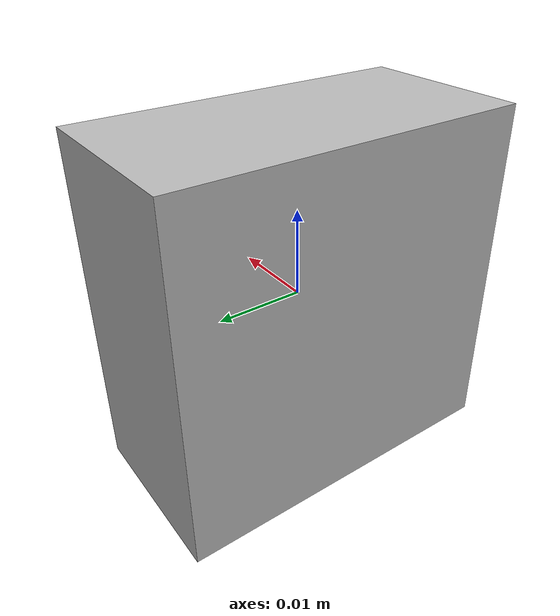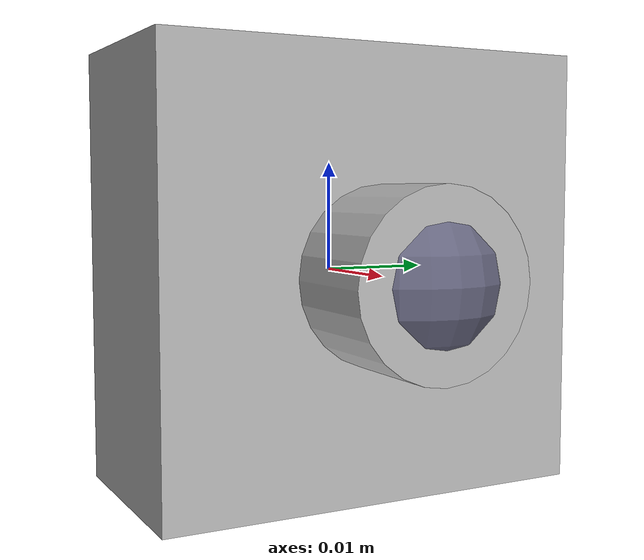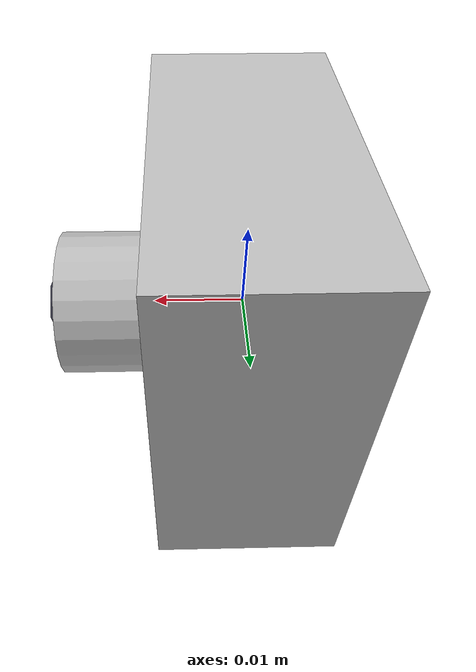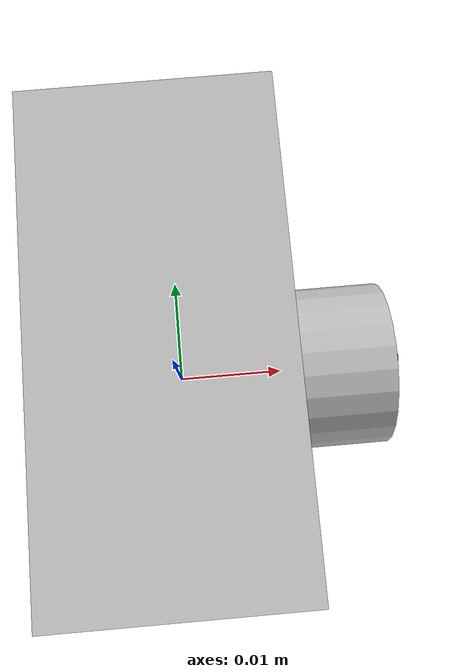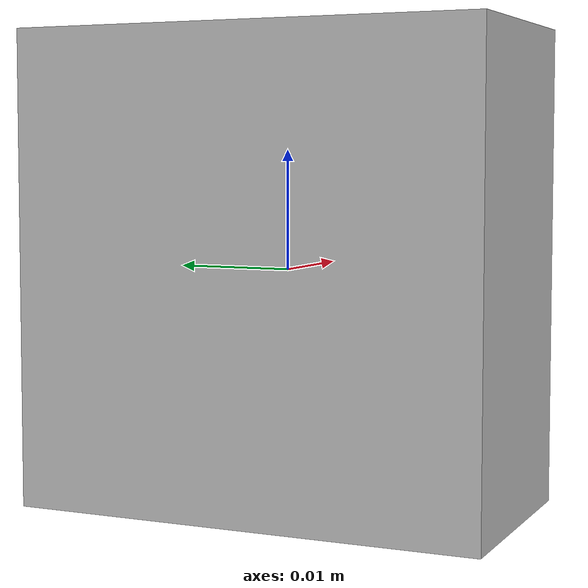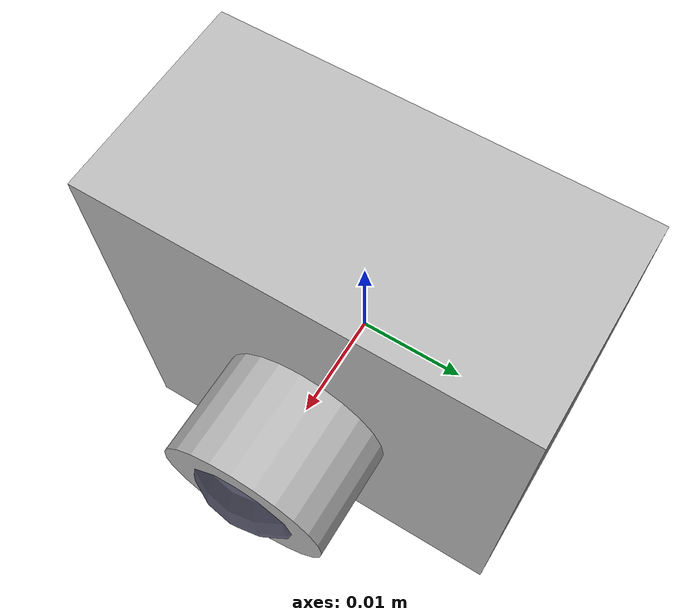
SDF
<?xml version="1.0" encoding="UTF-8"?>
<sdf version='1.9'>
  <model name='mono_cam'>
    <pose>0 0 0 0 0 0</pose>
    <self_collide>false</self_collide>
    <static>false</static>
    <link name="camera_link">
      <inertial>
        <pose>0.03 0.03 0.03 0 0 0</pose>
        <mass>0.050</mass>
        <inertia>
          <ixx>0.00004</ixx>
          <ixy>0</ixy>
          <ixz>0</ixz>
          <iyy>0.00004</iyy>
          <iyz>0</iyz>
          <izz>0.00004</izz>
        </inertia>
      </inertial>
      <visual name="mono_cam/visual/housing">
        <geometry>
          <box>
            <size>0.02 0.04 0.04</size>
          </box>
        </geometry>
      </visual>
      <visual name="mono_cam/visual/lens">
        <pose>0.015 0 0 0 1.5707 0</pose>
        <geometry>
          <cylinder>
            <radius>0.008</radius>
            <length>0.01</length>
          </cylinder>
        </geometry>
      </visual>
      <visual name="mono_cam/visual/lens_glass">
        <pose>0.014 0 0 0 0 0</pose>
        <geometry>
          <sphere>
            <radius>0.0079</radius>
          </sphere>
        </geometry>
        <material>
          <ambient>.4 .4 .5 .95</ambient>
          <diffuse>.4 .4 .5 .95</diffuse>
          <specular>1 1 1 1</specular>
          <emissive>0 0 0 1</emissive>
        </material>
      </visual>
      <sensor name="camera" type="camera">
        <gz_frame_id>camera_link</gz_frame_id>
        <pose>0 0 0 0 0 0</pose>
        <camera>
          <horizontal_fov>1.74</horizontal_fov>
          <image>
            <width>1280</width>
            <height>960</height>
          </image>
          <clip>
            <near>0.1</near>
            <far>3000</far>
          </clip>
        </camera>
        <always_on>1</always_on>
        <update_rate>30</update_rate>
        <visualize>true</visualize>
        <plugin filename="VideoRecorder" name="VideoRecorder">
          <gz-gui>
            <property key="resizable" type="bool">false</property>
            <property key="x" type="double">300</property>
            <property key="y" type="double">50</property>
            <property key="width" type="double">1920</property>
            <property key="height" type="double">1080</property>
            <property key="state" type="string">floating</property>
            <property key="showTitleBar" type="bool">false</property>
            <property key="cardBackground" type="string">#777777</property>
          </gz-gui>
          <record_video>
            <use_sim_time>true</use_sim_time>
            <lockstep>true</lockstep>
            <bitrate>4000000</bitrate>
          </record_video>
        </plugin>

        <plugin filename="gz-sim-camera-video-recorder-system"
          name="gz::sim::systems::CameraVideoRecorder">
          <service>/mono_cam/record_video</service>
          <use_sim_time>true</use_sim_time>
          <fps>60</fps>
          <bitrate>2070000</bitrate>
        </plugin>
      </sensor>
      <gravity>true</gravity>
      <velocity_decay />
    </link>
  </model>
</sdf>
